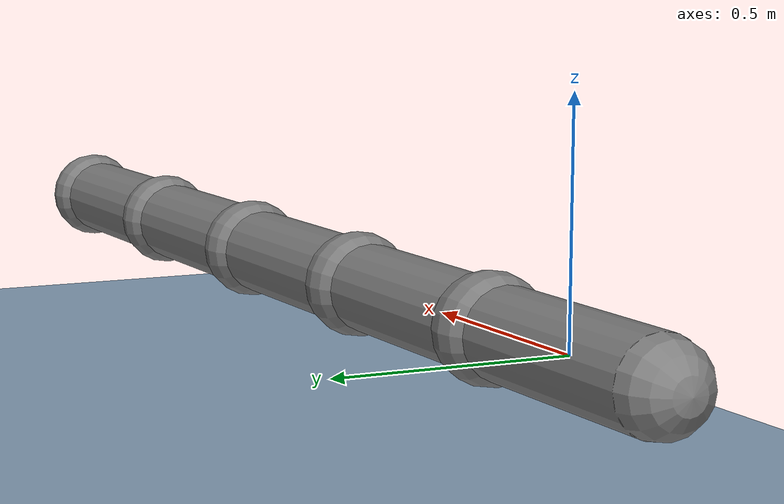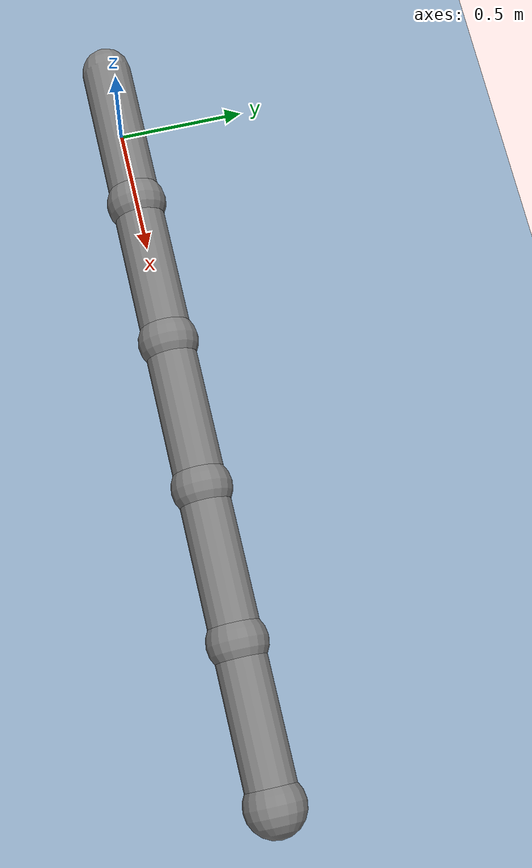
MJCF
<mujoco>
  <option gravity="0 0 -9.81" density="1.204" viscosity="1.8e-5" integrator="implicit"/>

  <visual>
    <global elevation="-10"/>
    <headlight ambient="0.35 0.35 0.35" diffuse="0.65 0.65 0.65" specular="0.10 0.10 0.10"/>
  </visual>

  <default>
    <tendon limited="true" width="0.003" rgba="1 1 1 1"/>
    <geom friction=".2"/>
    <default class="weight">
      <geom rgba=".8 .4 .8 1"/>
      <site rgba=".8 .4 .8 1"/>
    </default>
    <default class="balloon">
      <geom density="0.167" fluidshape="ellipsoid"/>
      <default class="pink">
        <geom rgba="1 .6 .7 1"/>
        <site rgba="1 .6 .7 1"/>
      </default>
      <default class="blue">
        <geom rgba=".3 .7 .9 1"/>
        <site rgba=".3 .7 .9 1"/>
      </default>
      <default class="green">
        <geom rgba=".4 .9 .5 1"/>
        <site rgba=".4 .9 .5 1"/>
      </default>
      <default class="orange">
        <geom rgba="1 .4 0 1"/>
        <site rgba="1 .4 0 1"/>
      </default>
    </default>
  </default>

  <asset>
    <texture name="grid" type="2d" builtin="checker" width="512" height="512" rgb2="0.7 0.8 0.9" rgb1="0.4 0.5 0.6"/>
    <material name="grid" texture="grid" texrepeat="2 2" texuniform="true" reflectance=".6"/>
  </asset>

  <worldbody>
    <geom name="ground" type="plane" size="5 5 .05" pos="0 0 -.5" material="grid" solref="0.004 1" solimp="0.9 0.95 0.001" />

    <camera name="Above" pos="0 0 2" xyaxes="1 0 0 0 1 0"/>
    <camera name="Side" pos="0 -2 .2" xyaxes="1 0 0 0 .02 .97"/>

    <!-- シーン全体を照らす3点ライト -->
    <light name="sun_key" directional="true" diffuse="0.75 0.75 0.75" specular="0.20 0.20 0.20"
           pos="1 1 4" dir="-1 -1 -2" castshadow="true"/>
    <light name="sun_fill" directional="true" diffuse="0.45 0.45 0.45" specular="0.05 0.05 0.05"
           pos="-2 -1 3" dir="1 1 -1" castshadow="false"/>
    <light name="sun_rim" directional="true" diffuse="0.25 0.25 0.25" specular="0.05 0.05 0.05"
           pos="-1 2 2" dir="0 -1 -1" castshadow="false"/>

    <!-- この薬みたいな形は下が原点 -->
    <!-- ルート（横向き） -->
    <body name="head" pos="0 0 0" euler="0 90 0">
      <freejoint/>

      <!-- 1リンク -->
      <geom type="capsule" size="0.1 0.3" mass="0.5"/>
      <geom type="sphere"  pos="0 0 0.3" size="0.12"/>

      <body name="second" pos="0 0 0.6">
        <joint name="j1" type="hinge" axis="0 1 0" damping="1"/>

        <geom type="capsule" size="0.1 0.3" mass="0.5"/>
        <geom type="sphere"  pos="0 0 0.3" size="0.12"/>

        <body name="third" pos="0 0 0.6">
          <joint name="j2" type="hinge" axis="0 1 0" damping="1"/>

          <geom type="capsule" size="0.1 0.3" mass="0.5"/>
          <geom type="sphere"  pos="0 0 0.3" size="0.12"/>

          <body name="fourth" pos="0 0 0.6">
            <joint name="j3" type="hinge" axis="0 1 0" damping="1"/>

            <geom type="capsule" size="0.1 0.3" mass="0.5"/>
            <geom type="sphere"  pos="0 0 0.3" size="0.12"/>

            <body name="fifth" pos="0 0 0.6">
              <joint name="j4" type="hinge" axis="0 1 0" damping="1"/>

              <geom type="capsule" size="0.1 0.3" mass="0.5"/>
              <geom type="sphere"  pos="0 0 0.3" size="0.12"/>
            </body>
          </body>
        </body>
      </body>
    </body>
  </worldbody>

  <!-- モーター -->
  <actuator>
    <motor joint="j1" gear="10" ctrlrange="-1 1"/>
    <motor joint="j2" gear="10" ctrlrange="-1 1"/>
    <motor joint="j3" gear="10" ctrlrange="-1 1"/>
    <motor joint="j4" gear="10" ctrlrange="-1 1"/>
  </actuator>
</mujoco>
